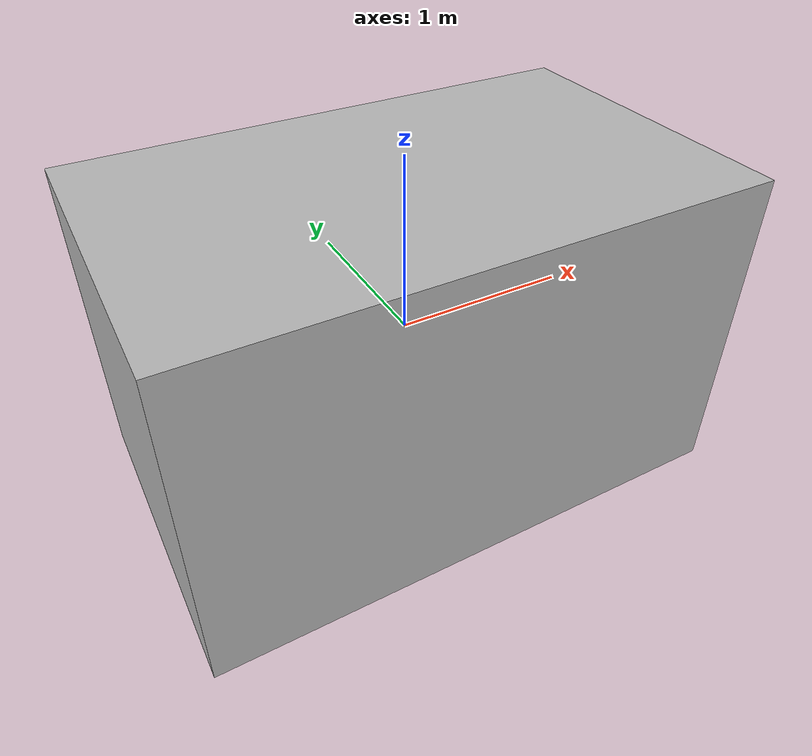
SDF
<?xml version="1.0"?>

<sdf version="1.6">
  <model name='TruckBox'>
    <link name="body">
      <pose>0 0 0 0 0 0</pose>

      <visual name="visual">
        <geometry>
          <box>
            <size>3.0 1.8 1.8</size>
          </box>
        </geometry>
      </visual>

      <collision name="collision">
        <geometry>
          <mesh>
            <uri>meshes/truck.obj</uri>
          </mesh>
        </geometry>
      </collision>

    </link>
  </model>
</sdf>
